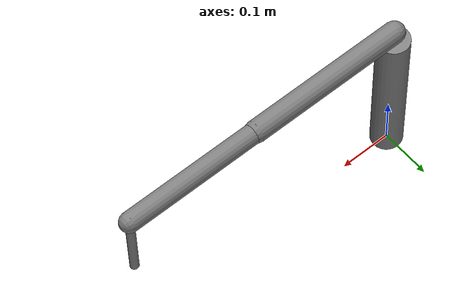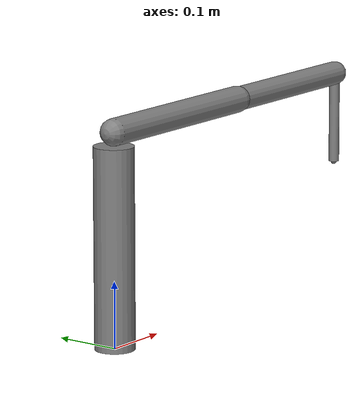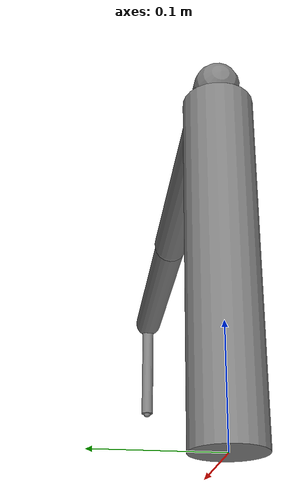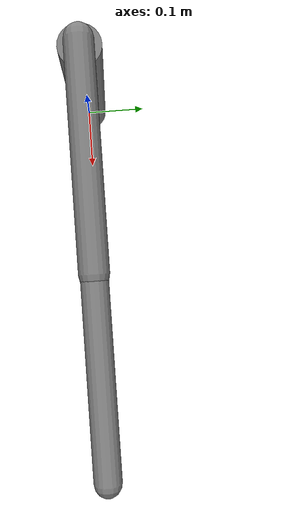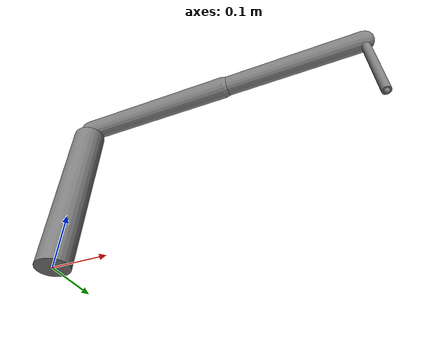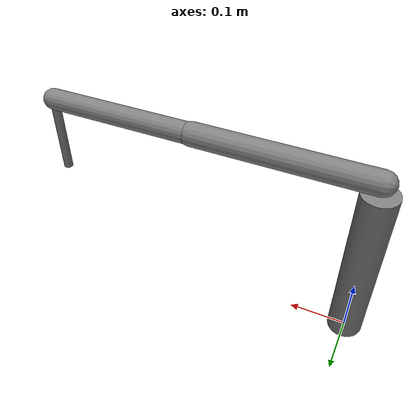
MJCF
<mujoco model="paint_arm">
  <compiler angle="degree"/>
  <option timestep="0.002"/>

  <worldbody>
    <!-- fixed post holding the arm up -->
    <body name="stand" pos="0 0 0">
      <geom name="column" type="cylinder" size="0.03 0.15" pos="0 0 0.15"/>

      <!-- SHOULDER: swings link1 horizontally, like a clock hand -->
      <body name="link1" pos="0 0 0.32">
        <joint name="shoulder" type="hinge" axis="0 0 1" range="-150 150" damping="2.0"/>
        <geom name="l1" type="capsule" fromto="0 0 0 0.30 0 0" size="0.02"
              contype="0" conaffinity="0"/>

        <!-- ELBOW: swings link2 relative to link1 -->
        <body name="link2" pos="0.30 0 0">
          <joint name="elbow" type="hinge" axis="0 0 1" range="-150 150" damping="2.0"/>
          <geom name="l2" type="capsule" fromto="0 0 0 0.26 0 0" size="0.018"
                contype="0" conaffinity="0"/>

          <!-- LIFT: slides the brush straight up/down -->
          <body name="brush_mount" pos="0.26 0 0">
            <joint name="lift" type="slide" axis="0 0 1" range="0 0.1"/>
            <geom name="brush" type="cylinder" fromto="0 0 0 0 0 -0.14" size="0.008"
                  contype="0" conaffinity="0"/>
            <!-- a named point at the bristle tip; we'll ask "where is this?" later -->
            <site name="brush_tip" pos="0 0 -0.14"/>
          </body>
        </body>
      </body>
    </body>
  </worldbody>

  <actuator>
    <position name="shoulder_m" joint="shoulder" kp="60"/>
    <position name="elbow_m" joint="elbow" kp="60"/>
    <position name="lift_m" joint="lift" kp="120"/>
  </actuator>
</mujoco>
